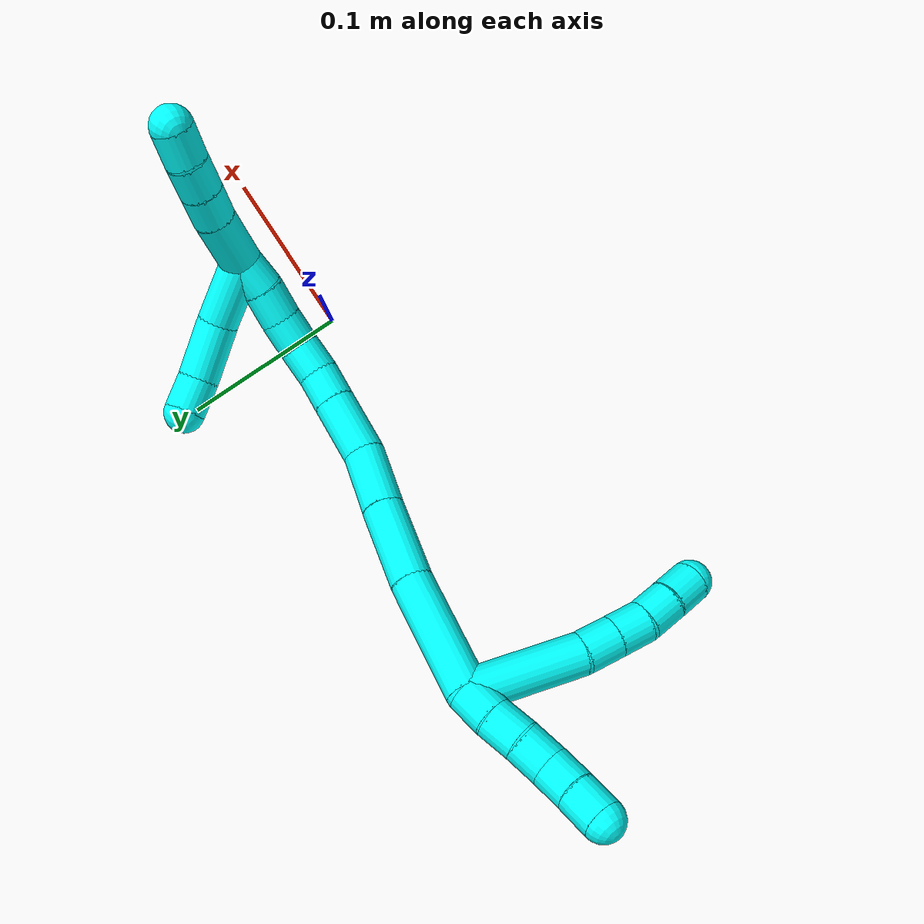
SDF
<sdf version="1.7">
 <world name="default">
  <model name="3">
   <static>0</static>
   <link name="3">
    <collision name="collision-cylinder-e_1_2_8">
     <pose>0.008186 -0.031663 0.008845 1.29838 0.24403 0.185591</pose>
     <geometry><cylinder><radius>0.0125</radius><length>0.067759</length></cylinder></geometry>
     <surface>
      <friction><ode><mu>1.16</mu><mu2>1.16</mu2><slip1>0</slip1><slip2>0</slip2></ode></friction>
      <contact><ode><kp>1e+06</kp><kd>1</kd><max_vel>0</max_vel><min_depth>0.001</min_depth></ode></contact>
     </surface>
    </collision>
    <visual name="visual-cylinder-e_1_2_8">
     <pose>0.008186 -0.031663 0.008845 1.29838 0.24403 0.185591</pose>
     <geometry><cylinder><radius>0.0125</radius><length>0.067759</length></cylinder></geometry>
     <material><ambient>0.003922 1 0.996078 1</ambient></material>
    </visual>
    <collision name="collision-cylinder-e_2_8_9">
     <pose>0.019188 -0.073516 0.018839 1.45862 0.268075 0.239861</pose>
     <geometry><cylinder><radius>0.0125</radius><length>0.021269</length></cylinder></geometry>
     <surface>
      <friction><ode><mu>1.16</mu><mu2>1.16</mu2><slip1>0</slip1><slip2>0</slip2></ode></friction>
      <contact><ode><kp>1e+06</kp><kd>1</kd><max_vel>0</max_vel><min_depth>0.001</min_depth></ode></contact>
     </surface>
    </collision>
    <visual name="visual-cylinder-e_2_8_9">
     <pose>0.019188 -0.073516 0.018839 1.45862 0.268075 0.239861</pose>
     <geometry><cylinder><radius>0.0125</radius><length>0.021269</length></cylinder></geometry>
     <material><ambient>0.003922 1 0.996078 1</ambient></material>
    </visual>
    <collision name="collision-cylinder-e_3_9_10">
     <pose>0.024738 -0.093429 0.021033 1.46357 0.272558 0.245087</pose>
     <geometry><cylinder><radius>0.0125</radius><length>0.020307</length></cylinder></geometry>
     <surface>
      <friction><ode><mu>1.16</mu><mu2>1.16</mu2><slip1>0</slip1><slip2>0</slip2></ode></friction>
      <contact><ode><kp>1e+06</kp><kd>1</kd><max_vel>0</max_vel><min_depth>0.001</min_depth></ode></contact>
     </surface>
    </collision>
    <visual name="visual-cylinder-e_3_9_10">
     <pose>0.024738 -0.093429 0.021033 1.46357 0.272558 0.245087</pose>
     <geometry><cylinder><radius>0.0125</radius><length>0.020307</length></cylinder></geometry>
     <material><ambient>0.003922 1 0.996078 1</ambient></material>
    </visual>
    <collision name="collision-cylinder-e_4_10_11">
     <pose>0.030305 -0.112837 0.021098 1.67184 0.283245 0.312949</pose>
     <geometry><cylinder><radius>0.0125</radius><length>0.020279</length></cylinder></geometry>
     <surface>
      <friction><ode><mu>1.16</mu><mu2>1.16</mu2><slip1>0</slip1><slip2>0</slip2></ode></friction>
      <contact><ode><kp>1e+06</kp><kd>1</kd><max_vel>0</max_vel><min_depth>0.001</min_depth></ode></contact>
     </surface>
    </collision>
    <visual name="visual-cylinder-e_4_10_11">
     <pose>0.030305 -0.112837 0.021098 1.67184 0.283245 0.312949</pose>
     <geometry><cylinder><radius>0.0125</radius><length>0.020279</length></cylinder></geometry>
     <material><ambient>0.003922 1 0.996078 1</ambient></material>
    </visual>
    <collision name="collision-cylinder-e_5_11_6">
     <pose>0.035246 -0.132397 0.018712 1.71203 0.208153 0.239559</pose>
     <geometry><cylinder><radius>0.0125</radius><length>0.020387</length></cylinder></geometry>
     <surface>
      <friction><ode><mu>1.16</mu><mu2>1.16</mu2><slip1>0</slip1><slip2>0</slip2></ode></friction>
      <contact><ode><kp>1e+06</kp><kd>1</kd><max_vel>0</max_vel><min_depth>0.001</min_depth></ode></contact>
     </surface>
    </collision>
    <visual name="visual-cylinder-e_5_11_6">
     <pose>0.035246 -0.132397 0.018712 1.71203 0.208153 0.239559</pose>
     <geometry><cylinder><radius>0.0125</radius><length>0.020387</length></cylinder></geometry>
     <material><ambient>0.003922 1 0.996078 1</ambient></material>
    </visual>
    <collision name="collision-cylinder-e_1_2_12">
     <pose>-0.000391 -0.001232 0.009916 0.123649 -0.039135 -0.002423</pose>
     <geometry><cylinder><radius>0.0125</radius><length>0.02</length></cylinder></geometry>
     <surface>
      <friction><ode><mu>1.16</mu><mu2>1.16</mu2><slip1>0</slip1><slip2>0</slip2></ode></friction>
      <contact><ode><kp>1e+06</kp><kd>1</kd><max_vel>0</max_vel><min_depth>0.001</min_depth></ode></contact>
     </surface>
    </collision>
    <visual name="visual-cylinder-e_1_2_12">
     <pose>-0.000391 -0.001232 0.009916 0.123649 -0.039135 -0.002423</pose>
     <geometry><cylinder><radius>0.0125</radius><length>0.02</length></cylinder></geometry>
     <material><ambient>0.003922 1 0.996078 1</ambient></material>
    </visual>
    <collision name="collision-cylinder-e_2_12_13">
     <pose>-0.000964 -0.004751 0.029566 0.230702 -0.018174 -0.002106</pose>
     <geometry><cylinder><radius>0.0125</radius><length>0.02</length></cylinder></geometry>
     <surface>
      <friction><ode><mu>1.16</mu><mu2>1.16</mu2><slip1>0</slip1><slip2>0</slip2></ode></friction>
      <contact><ode><kp>1e+06</kp><kd>1</kd><max_vel>0</max_vel><min_depth>0.001</min_depth></ode></contact>
     </surface>
    </collision>
    <visual name="visual-cylinder-e_2_12_13">
     <pose>-0.000964 -0.004751 0.029566 0.230702 -0.018174 -0.002106</pose>
     <geometry><cylinder><radius>0.0125</radius><length>0.02</length></cylinder></geometry>
     <material><ambient>0.003922 1 0.996078 1</ambient></material>
    </visual>
    <collision name="collision-cylinder-e_3_13_14">
     <pose>-0.002468 -0.009551 0.048887 0.256358 -0.132566 -0.017111</pose>
     <geometry><cylinder><radius>0.0125</radius><length>0.02</length></cylinder></geometry>
     <surface>
      <friction><ode><mu>1.16</mu><mu2>1.16</mu2><slip1>0</slip1><slip2>0</slip2></ode></friction>
      <contact><ode><kp>1e+06</kp><kd>1</kd><max_vel>0</max_vel><min_depth>0.001</min_depth></ode></contact>
     </surface>
    </collision>
    <visual name="visual-cylinder-e_3_13_14">
     <pose>-0.002468 -0.009551 0.048887 0.256358 -0.132566 -0.017111</pose>
     <geometry><cylinder><radius>0.0125</radius><length>0.02</length></cylinder></geometry>
     <material><ambient>0.003922 1 0.996078 1</ambient></material>
    </visual>
    <collision name="collision-cylinder-e_4_14_15">
     <pose>-0.002633 -0.012324 0.068405 0.026152 0.115922 0.001518</pose>
     <geometry><cylinder><radius>0.0125</radius><length>0.02</length></cylinder></geometry>
     <surface>
      <friction><ode><mu>1.16</mu><mu2>1.16</mu2><slip1>0</slip1><slip2>0</slip2></ode></friction>
      <contact><ode><kp>1e+06</kp><kd>1</kd><max_vel>0</max_vel><min_depth>0.001</min_depth></ode></contact>
     </surface>
    </collision>
    <visual name="visual-cylinder-e_4_14_15">
     <pose>-0.002633 -0.012324 0.068405 0.026152 0.115922 0.001518</pose>
     <geometry><cylinder><radius>0.0125</radius><length>0.02</length></cylinder></geometry>
     <material><ambient>0.003922 1 0.996078 1</ambient></material>
    </visual>
    <collision name="collision-cylinder-e_5_15_5">
     <pose>-0.000899 -0.012926 0.088312 0.034306 0.057771 0.000991</pose>
     <geometry><cylinder><radius>0.0125</radius><length>0.02</length></cylinder></geometry>
     <surface>
      <friction><ode><mu>1.16</mu><mu2>1.16</mu2><slip1>0</slip1><slip2>0</slip2></ode></friction>
      <contact><ode><kp>1e+06</kp><kd>1</kd><max_vel>0</max_vel><min_depth>0.001</min_depth></ode></contact>
     </surface>
    </collision>
    <visual name="visual-cylinder-e_5_15_5">
     <pose>-0.000899 -0.012926 0.088312 0.034306 0.057771 0.000991</pose>
     <geometry><cylinder><radius>0.0125</radius><length>0.02</length></cylinder></geometry>
     <material><ambient>0.003922 1 0.996078 1</ambient></material>
    </visual>
    <collision name="collision-cylinder-e_1_2_16">
     <pose>0.006771 -0.004943 -0.035106 3.00172 0.188711 1.86718</pose>
     <geometry><cylinder><radius>0.0125</radius><length>0.072186</length></cylinder></geometry>
     <surface>
      <friction><ode><mu>1.16</mu><mu2>1.16</mu2><slip1>0</slip1><slip2>0</slip2></ode></friction>
      <contact><ode><kp>1e+06</kp><kd>1</kd><max_vel>0</max_vel><min_depth>0.001</min_depth></ode></contact>
     </surface>
    </collision>
    <visual name="visual-cylinder-e_1_2_16">
     <pose>0.006771 -0.004943 -0.035106 3.00172 0.188711 1.86718</pose>
     <geometry><cylinder><radius>0.0125</radius><length>0.072186</length></cylinder></geometry>
     <material><ambient>0.003922 1 0.996078 1</ambient></material>
    </visual>
    <collision name="collision-cylinder-e_2_16_17">
     <pose>0.019614 -0.014956 -0.09368 2.92882 0.24771 1.72357</pose>
     <geometry><cylinder><radius>0.0125</radius><length>0.04953</length></cylinder></geometry>
     <surface>
      <friction><ode><mu>1.16</mu><mu2>1.16</mu2><slip1>0</slip1><slip2>0</slip2></ode></friction>
      <contact><ode><kp>1e+06</kp><kd>1</kd><max_vel>0</max_vel><min_depth>0.001</min_depth></ode></contact>
     </surface>
    </collision>
    <visual name="visual-cylinder-e_2_16_17">
     <pose>0.019614 -0.014956 -0.09368 2.92882 0.24771 1.72357</pose>
     <geometry><cylinder><radius>0.0125</radius><length>0.04953</length></cylinder></geometry>
     <material><ambient>0.003922 1 0.996078 1</ambient></material>
    </visual>
    <collision name="collision-cylinder-e_3_17_18">
     <pose>0.030463 -0.024602 -0.135232 2.89373 0.250695 1.58227</pose>
     <geometry><cylinder><radius>0.0125</radius><length>0.038512</length></cylinder></geometry>
     <surface>
      <friction><ode><mu>1.16</mu><mu2>1.16</mu2><slip1>0</slip1><slip2>0</slip2></ode></friction>
      <contact><ode><kp>1e+06</kp><kd>1</kd><max_vel>0</max_vel><min_depth>0.001</min_depth></ode></contact>
     </surface>
    </collision>
    <visual name="visual-cylinder-e_3_17_18">
     <pose>0.030463 -0.024602 -0.135232 2.89373 0.250695 1.58227</pose>
     <geometry><cylinder><radius>0.0125</radius><length>0.038512</length></cylinder></geometry>
     <material><ambient>0.003922 1 0.996078 1</ambient></material>
    </visual>
    <collision name="collision-cylinder-e_4_18_19">
     <pose>0.041986 -0.02868 -0.170713 -3.11292 0.369775 -2.98859</pose>
     <geometry><cylinder><radius>0.0125</radius><length>0.037332</length></cylinder></geometry>
     <surface>
      <friction><ode><mu>1.16</mu><mu2>1.16</mu2><slip1>0</slip1><slip2>0</slip2></ode></friction>
      <contact><ode><kp>1e+06</kp><kd>1</kd><max_vel>0</max_vel><min_depth>0.001</min_depth></ode></contact>
     </surface>
    </collision>
    <visual name="visual-cylinder-e_4_18_19">
     <pose>0.041986 -0.02868 -0.170713 -3.11292 0.369775 -2.98859</pose>
     <geometry><cylinder><radius>0.0125</radius><length>0.037332</length></cylinder></geometry>
     <material><ambient>0.003922 1 0.996078 1</ambient></material>
    </visual>
    <collision name="collision-cylinder-e_5_19_20">
     <pose>0.052622 -0.027895 -0.197692 -3.11181 0.385504 -2.9893</pose>
     <geometry><cylinder><radius>0.0125</radius><length>0.02069</length></cylinder></geometry>
     <surface>
      <friction><ode><mu>1.16</mu><mu2>1.16</mu2><slip1>0</slip1><slip2>0</slip2></ode></friction>
      <contact><ode><kp>1e+06</kp><kd>1</kd><max_vel>0</max_vel><min_depth>0.001</min_depth></ode></contact>
     </surface>
    </collision>
    <visual name="visual-cylinder-e_5_19_20">
     <pose>0.052622 -0.027895 -0.197692 -3.11181 0.385504 -2.9893</pose>
     <geometry><cylinder><radius>0.0125</radius><length>0.02069</length></cylinder></geometry>
     <material><ambient>0.003922 1 0.996078 1</ambient></material>
    </visual>
    <collision name="collision-cylinder-e_6_20_21">
     <pose>0.061266 -0.025454 -0.215989 -2.89906 0.487004 -2.22949</pose>
     <geometry><cylinder><radius>0.0125</radius><length>0.020317</length></cylinder></geometry>
     <surface>
      <friction><ode><mu>1.16</mu><mu2>1.16</mu2><slip1>0</slip1><slip2>0</slip2></ode></friction>
      <contact><ode><kp>1e+06</kp><kd>1</kd><max_vel>0</max_vel><min_depth>0.001</min_depth></ode></contact>
     </surface>
    </collision>
    <visual name="visual-cylinder-e_6_20_21">
     <pose>0.061266 -0.025454 -0.215989 -2.89906 0.487004 -2.22949</pose>
     <geometry><cylinder><radius>0.0125</radius><length>0.020317</length></cylinder></geometry>
     <material><ambient>0.003922 1 0.996078 1</ambient></material>
    </visual>
    <collision name="collision-cylinder-e_7_21_22">
     <pose>0.072635 -0.019957 -0.231727 -2.69764 0.70479 -2.04069</pose>
     <geometry><cylinder><radius>0.0125</radius><length>0.020421</length></cylinder></geometry>
     <surface>
      <friction><ode><mu>1.16</mu><mu2>1.16</mu2><slip1>0</slip1><slip2>0</slip2></ode></friction>
      <contact><ode><kp>1e+06</kp><kd>1</kd><max_vel>0</max_vel><min_depth>0.001</min_depth></ode></contact>
     </surface>
    </collision>
    <visual name="visual-cylinder-e_7_21_22">
     <pose>0.072635 -0.019957 -0.231727 -2.69764 0.70479 -2.04069</pose>
     <geometry><cylinder><radius>0.0125</radius><length>0.020421</length></cylinder></geometry>
     <material><ambient>0.003922 1 0.996078 1</ambient></material>
    </visual>
    <collision name="collision-cylinder-e_8_22_23">
     <pose>0.08692 -0.013169 -0.244896 -2.63033 0.827743 -2.06812</pose>
     <geometry><cylinder><radius>0.0125</radius><length>0.020831</length></cylinder></geometry>
     <surface>
      <friction><ode><mu>1.16</mu><mu2>1.16</mu2><slip1>0</slip1><slip2>0</slip2></ode></friction>
      <contact><ode><kp>1e+06</kp><kd>1</kd><max_vel>0</max_vel><min_depth>0.001</min_depth></ode></contact>
     </surface>
    </collision>
    <visual name="visual-cylinder-e_8_22_23">
     <pose>0.08692 -0.013169 -0.244896 -2.63033 0.827743 -2.06812</pose>
     <geometry><cylinder><radius>0.0125</radius><length>0.020831</length></cylinder></geometry>
     <material><ambient>0.003922 1 0.996078 1</ambient></material>
    </visual>
    <collision name="collision-cylinder-e_9_23_1">
     <pose>0.101088 -0.005129 -0.257247 -2.50452 0.699668 -1.6717</pose>
     <geometry><cylinder><radius>0.0125</radius><length>0.02018</length></cylinder></geometry>
     <surface>
      <friction><ode><mu>1.16</mu><mu2>1.16</mu2><slip1>0</slip1><slip2>0</slip2></ode></friction>
      <contact><ode><kp>1e+06</kp><kd>1</kd><max_vel>0</max_vel><min_depth>0.001</min_depth></ode></contact>
     </surface>
    </collision>
    <visual name="visual-cylinder-e_9_23_1">
     <pose>0.101088 -0.005129 -0.257247 -2.50452 0.699668 -1.6717</pose>
     <geometry><cylinder><radius>0.0125</radius><length>0.02018</length></cylinder></geometry>
     <material><ambient>0.003922 1 0.996078 1</ambient></material>
    </visual>
    <collision name="collision-cylinder-e_1_1_24">
     <pose>0.088381 0.006172 -0.262083 -1.36957 -1.22826 1.04484</pose>
     <geometry><cylinder><radius>0.0125</radius><length>0.040776</length></cylinder></geometry>
     <surface>
      <friction><ode><mu>1.16</mu><mu2>1.16</mu2><slip1>0</slip1><slip2>0</slip2></ode></friction>
      <contact><ode><kp>1e+06</kp><kd>1</kd><max_vel>0</max_vel><min_depth>0.001</min_depth></ode></contact>
     </surface>
    </collision>
    <visual name="visual-cylinder-e_1_1_24">
     <pose>0.088381 0.006172 -0.262083 -1.36957 -1.22826 1.04484</pose>
     <geometry><cylinder><radius>0.0125</radius><length>0.040776</length></cylinder></geometry>
     <material><ambient>0.003922 1 0.996078 1</ambient></material>
    </visual>
    <collision name="collision-cylinder-e_2_24_25">
     <pose>0.053901 0.021495 -0.254751 -0.965206 -0.969713 0.538597</pose>
     <geometry><cylinder><radius>0.0125</radius><length>0.037047</length></cylinder></geometry>
     <surface>
      <friction><ode><mu>1.16</mu><mu2>1.16</mu2><slip1>0</slip1><slip2>0</slip2></ode></friction>
      <contact><ode><kp>1e+06</kp><kd>1</kd><max_vel>0</max_vel><min_depth>0.001</min_depth></ode></contact>
     </surface>
    </collision>
    <visual name="visual-cylinder-e_2_24_25">
     <pose>0.053901 0.021495 -0.254751 -0.965206 -0.969713 0.538597</pose>
     <geometry><cylinder><radius>0.0125</radius><length>0.037047</length></cylinder></geometry>
     <material><ambient>0.003922 1 0.996078 1</ambient></material>
    </visual>
    <collision name="collision-cylinder-e_3_25_4">
     <pose>0.031568 0.037018 -0.243747 -0.940523 -0.689776 0.361226</pose>
     <geometry><cylinder><radius>0.0125</radius><length>0.022177</length></cylinder></geometry>
     <surface>
      <friction><ode><mu>1.16</mu><mu2>1.16</mu2><slip1>0</slip1><slip2>0</slip2></ode></friction>
      <contact><ode><kp>1e+06</kp><kd>1</kd><max_vel>0</max_vel><min_depth>0.001</min_depth></ode></contact>
     </surface>
    </collision>
    <visual name="visual-cylinder-e_3_25_4">
     <pose>0.031568 0.037018 -0.243747 -0.940523 -0.689776 0.361226</pose>
     <geometry><cylinder><radius>0.0125</radius><length>0.022177</length></cylinder></geometry>
     <material><ambient>0.003922 1 0.996078 1</ambient></material>
    </visual>
    <collision name="collision-cylinder-e_1_1_26">
     <pose>0.123343 0.008965 -0.26628 -1.8601 1.0092 -1.27495</pose>
     <geometry><cylinder><radius>0.0125</radius><length>0.037234</length></cylinder></geometry>
     <surface>
      <friction><ode><mu>1.16</mu><mu2>1.16</mu2><slip1>0</slip1><slip2>0</slip2></ode></friction>
      <contact><ode><kp>1e+06</kp><kd>1</kd><max_vel>0</max_vel><min_depth>0.001</min_depth></ode></contact>
     </surface>
    </collision>
    <visual name="visual-cylinder-e_1_1_26">
     <pose>0.123343 0.008965 -0.26628 -1.8601 1.0092 -1.27495</pose>
     <geometry><cylinder><radius>0.0125</radius><length>0.037234</length></cylinder></geometry>
     <material><ambient>0.003922 1 0.996078 1</ambient></material>
    </visual>
    <collision name="collision-cylinder-e_2_26_27">
     <pose>0.148315 0.022994 -0.270266 -1.82098 1.10152 -1.33824</pose>
     <geometry><cylinder><radius>0.0125</radius><length>0.020664</length></cylinder></geometry>
     <surface>
      <friction><ode><mu>1.16</mu><mu2>1.16</mu2><slip1>0</slip1><slip2>0</slip2></ode></friction>
      <contact><ode><kp>1e+06</kp><kd>1</kd><max_vel>0</max_vel><min_depth>0.001</min_depth></ode></contact>
     </surface>
    </collision>
    <visual name="visual-cylinder-e_2_26_27">
     <pose>0.148315 0.022994 -0.270266 -1.82098 1.10152 -1.33824</pose>
     <geometry><cylinder><radius>0.0125</radius><length>0.020664</length></cylinder></geometry>
     <material><ambient>0.003922 1 0.996078 1</ambient></material>
    </visual>
    <collision name="collision-cylinder-e_3_27_28">
     <pose>0.166737 0.032041 -0.273003 -1.90721 1.09123 -1.41528</pose>
     <geometry><cylinder><radius>0.0125</radius><length>0.020754</length></cylinder></geometry>
     <surface>
      <friction><ode><mu>1.16</mu><mu2>1.16</mu2><slip1>0</slip1><slip2>0</slip2></ode></friction>
      <contact><ode><kp>1e+06</kp><kd>1</kd><max_vel>0</max_vel><min_depth>0.001</min_depth></ode></contact>
     </surface>
    </collision>
    <visual name="visual-cylinder-e_3_27_28">
     <pose>0.166737 0.032041 -0.273003 -1.90721 1.09123 -1.41528</pose>
     <geometry><cylinder><radius>0.0125</radius><length>0.020754</length></cylinder></geometry>
     <material><ambient>0.003922 1 0.996078 1</ambient></material>
    </visual>
    <collision name="collision-cylinder-e_4_28_3">
     <pose>0.185499 0.040436 -0.277341 -2.18918 1.10896 -1.75264</pose>
     <geometry><cylinder><radius>0.0125</radius><length>0.021348</length></cylinder></geometry>
     <surface>
      <friction><ode><mu>1.16</mu><mu2>1.16</mu2><slip1>0</slip1><slip2>0</slip2></ode></friction>
      <contact><ode><kp>1e+06</kp><kd>1</kd><max_vel>0</max_vel><min_depth>0.001</min_depth></ode></contact>
     </surface>
    </collision>
    <visual name="visual-cylinder-e_4_28_3">
     <pose>0.185499 0.040436 -0.277341 -2.18918 1.10896 -1.75264</pose>
     <geometry><cylinder><radius>0.0125</radius><length>0.021348</length></cylinder></geometry>
     <material><ambient>0.003922 1 0.996078 1</ambient></material>
    </visual>
    <collision name="collision-sphere-3">
     <pose>0.195055 0.044311 -0.280098 0 -0 0</pose>
     <geometry><sphere><radius>0.0125</radius></sphere></geometry>
     <surface>
      <friction><ode><mu>1.16</mu><mu2>1.16</mu2><slip1>0</slip1><slip2>0</slip2></ode></friction>
      <contact><ode><kp>1e+06</kp><kd>1</kd><max_vel>0</max_vel><min_depth>0.001</min_depth></ode></contact>
     </surface>
    </collision>
    <visual name="visual-sphere-3">
     <pose>0.195055 0.044311 -0.280098 0 -0 0</pose>
     <geometry><sphere><radius>0.0125</radius></sphere></geometry>
     <material><ambient>0.003922 1 0.996078 1</ambient></material>
    </visual>
    <collision name="collision-sphere-28">
     <pose>0.175943 0.03656 -0.274583 0 -0 0</pose>
     <geometry><sphere><radius>0.0125</radius></sphere></geometry>
     <surface>
      <friction><ode><mu>1.16</mu><mu2>1.16</mu2><slip1>0</slip1><slip2>0</slip2></ode></friction>
      <contact><ode><kp>1e+06</kp><kd>1</kd><max_vel>0</max_vel><min_depth>0.001</min_depth></ode></contact>
     </surface>
    </collision>
    <visual name="visual-sphere-28">
     <pose>0.175943 0.03656 -0.274583 0 -0 0</pose>
     <geometry><sphere><radius>0.0125</radius></sphere></geometry>
     <material><ambient>0.003922 1 0.996078 1</ambient></material>
    </visual>
    <collision name="collision-sphere-27">
     <pose>0.15753 0.027521 -0.271422 0 -0 0</pose>
     <geometry><sphere><radius>0.0125</radius></sphere></geometry>
     <surface>
      <friction><ode><mu>1.16</mu><mu2>1.16</mu2><slip1>0</slip1><slip2>0</slip2></ode></friction>
      <contact><ode><kp>1e+06</kp><kd>1</kd><max_vel>0</max_vel><min_depth>0.001</min_depth></ode></contact>
     </surface>
    </collision>
    <visual name="visual-sphere-27">
     <pose>0.15753 0.027521 -0.271422 0 -0 0</pose>
     <geometry><sphere><radius>0.0125</radius></sphere></geometry>
     <material><ambient>0.003922 1 0.996078 1</ambient></material>
    </visual>
    <collision name="collision-sphere-26">
     <pose>0.1391 0.018467 -0.269109 0 -0 0</pose>
     <geometry><sphere><radius>0.0125</radius></sphere></geometry>
     <surface>
      <friction><ode><mu>1.16</mu><mu2>1.16</mu2><slip1>0</slip1><slip2>0</slip2></ode></friction>
      <contact><ode><kp>1e+06</kp><kd>1</kd><max_vel>0</max_vel><min_depth>0.001</min_depth></ode></contact>
     </surface>
    </collision>
    <visual name="visual-sphere-26">
     <pose>0.1391 0.018467 -0.269109 0 -0 0</pose>
     <geometry><sphere><radius>0.0125</radius></sphere></geometry>
     <material><ambient>0.003922 1 0.996078 1</ambient></material>
    </visual>
    <collision name="collision-sphere-4">
     <pose>0.024512 0.043928 -0.238706 0 -0 0</pose>
     <geometry><sphere><radius>0.0125</radius></sphere></geometry>
     <surface>
      <friction><ode><mu>1.16</mu><mu2>1.16</mu2><slip1>0</slip1><slip2>0</slip2></ode></friction>
      <contact><ode><kp>1e+06</kp><kd>1</kd><max_vel>0</max_vel><min_depth>0.001</min_depth></ode></contact>
     </surface>
    </collision>
    <visual name="visual-sphere-4">
     <pose>0.024512 0.043928 -0.238706 0 -0 0</pose>
     <geometry><sphere><radius>0.0125</radius></sphere></geometry>
     <material><ambient>0.003922 1 0.996078 1</ambient></material>
    </visual>
    <collision name="collision-sphere-25">
     <pose>0.038624 0.030108 -0.248788 0 -0 0</pose>
     <geometry><sphere><radius>0.0125</radius></sphere></geometry>
     <surface>
      <friction><ode><mu>1.16</mu><mu2>1.16</mu2><slip1>0</slip1><slip2>0</slip2></ode></friction>
      <contact><ode><kp>1e+06</kp><kd>1</kd><max_vel>0</max_vel><min_depth>0.001</min_depth></ode></contact>
     </surface>
    </collision>
    <visual name="visual-sphere-25">
     <pose>0.038624 0.030108 -0.248788 0 -0 0</pose>
     <geometry><sphere><radius>0.0125</radius></sphere></geometry>
     <material><ambient>0.003922 1 0.996078 1</ambient></material>
    </visual>
    <collision name="collision-sphere-24">
     <pose>0.069178 0.012882 -0.260715 0 -0 0</pose>
     <geometry><sphere><radius>0.0125</radius></sphere></geometry>
     <surface>
      <friction><ode><mu>1.16</mu><mu2>1.16</mu2><slip1>0</slip1><slip2>0</slip2></ode></friction>
      <contact><ode><kp>1e+06</kp><kd>1</kd><max_vel>0</max_vel><min_depth>0.001</min_depth></ode></contact>
     </surface>
    </collision>
    <visual name="visual-sphere-24">
     <pose>0.069178 0.012882 -0.260715 0 -0 0</pose>
     <geometry><sphere><radius>0.0125</radius></sphere></geometry>
     <material><ambient>0.003922 1 0.996078 1</ambient></material>
    </visual>
    <collision name="collision-sphere-1">
     <pose>0.107585 -0.000537 -0.263452 0 -0 0</pose>
     <geometry><sphere><radius>0.0125</radius></sphere></geometry>
     <surface>
      <friction><ode><mu>1.16</mu><mu2>1.16</mu2><slip1>0</slip1><slip2>0</slip2></ode></friction>
      <contact><ode><kp>1e+06</kp><kd>1</kd><max_vel>0</max_vel><min_depth>0.001</min_depth></ode></contact>
     </surface>
    </collision>
    <visual name="visual-sphere-1">
     <pose>0.107585 -0.000537 -0.263452 0 -0 0</pose>
     <geometry><sphere><radius>0.0125</radius></sphere></geometry>
     <material><ambient>0.003922 1 0.996078 1</ambient></material>
    </visual>
    <collision name="collision-sphere-23">
     <pose>0.09459 -0.009721 -0.251042 0 -0 0</pose>
     <geometry><sphere><radius>0.0125</radius></sphere></geometry>
     <surface>
      <friction><ode><mu>1.16</mu><mu2>1.16</mu2><slip1>0</slip1><slip2>0</slip2></ode></friction>
      <contact><ode><kp>1e+06</kp><kd>1</kd><max_vel>0</max_vel><min_depth>0.001</min_depth></ode></contact>
     </surface>
    </collision>
    <visual name="visual-sphere-23">
     <pose>0.09459 -0.009721 -0.251042 0 -0 0</pose>
     <geometry><sphere><radius>0.0125</radius></sphere></geometry>
     <material><ambient>0.003922 1 0.996078 1</ambient></material>
    </visual>
    <collision name="collision-sphere-22">
     <pose>0.07925 -0.016616 -0.238751 0 -0 0</pose>
     <geometry><sphere><radius>0.0125</radius></sphere></geometry>
     <surface>
      <friction><ode><mu>1.16</mu><mu2>1.16</mu2><slip1>0</slip1><slip2>0</slip2></ode></friction>
      <contact><ode><kp>1e+06</kp><kd>1</kd><max_vel>0</max_vel><min_depth>0.001</min_depth></ode></contact>
     </surface>
    </collision>
    <visual name="visual-sphere-22">
     <pose>0.07925 -0.016616 -0.238751 0 -0 0</pose>
     <geometry><sphere><radius>0.0125</radius></sphere></geometry>
     <material><ambient>0.003922 1 0.996078 1</ambient></material>
    </visual>
    <collision name="collision-sphere-21">
     <pose>0.06602 -0.023298 -0.224704 0 -0 0</pose>
     <geometry><sphere><radius>0.0125</radius></sphere></geometry>
     <surface>
      <friction><ode><mu>1.16</mu><mu2>1.16</mu2><slip1>0</slip1><slip2>0</slip2></ode></friction>
      <contact><ode><kp>1e+06</kp><kd>1</kd><max_vel>0</max_vel><min_depth>0.001</min_depth></ode></contact>
     </surface>
    </collision>
    <visual name="visual-sphere-21">
     <pose>0.06602 -0.023298 -0.224704 0 -0 0</pose>
     <geometry><sphere><radius>0.0125</radius></sphere></geometry>
     <material><ambient>0.003922 1 0.996078 1</ambient></material>
    </visual>
    <collision name="collision-sphere-6">
     <pose>0.037352 -0.142271 0.017308 0 -0 0</pose>
     <geometry><sphere><radius>0.0125</radius></sphere></geometry>
     <surface>
      <friction><ode><mu>1.16</mu><mu2>1.16</mu2><slip1>0</slip1><slip2>0</slip2></ode></friction>
      <contact><ode><kp>1e+06</kp><kd>1</kd><max_vel>0</max_vel><min_depth>0.001</min_depth></ode></contact>
     </surface>
    </collision>
    <visual name="visual-sphere-6">
     <pose>0.037352 -0.142271 0.017308 0 -0 0</pose>
     <geometry><sphere><radius>0.0125</radius></sphere></geometry>
     <material><ambient>0.003922 1 0.996078 1</ambient></material>
    </visual>
    <collision name="collision-sphere-11">
     <pose>0.033139 -0.122523 0.020116 0 -0 0</pose>
     <geometry><sphere><radius>0.0125</radius></sphere></geometry>
     <surface>
      <friction><ode><mu>1.16</mu><mu2>1.16</mu2><slip1>0</slip1><slip2>0</slip2></ode></friction>
      <contact><ode><kp>1e+06</kp><kd>1</kd><max_vel>0</max_vel><min_depth>0.001</min_depth></ode></contact>
     </surface>
    </collision>
    <visual name="visual-sphere-11">
     <pose>0.033139 -0.122523 0.020116 0 -0 0</pose>
     <geometry><sphere><radius>0.0125</radius></sphere></geometry>
     <material><ambient>0.003922 1 0.996078 1</ambient></material>
    </visual>
    <collision name="collision-sphere-10">
     <pose>0.027472 -0.103151 0.02208 0 -0 0</pose>
     <geometry><sphere><radius>0.0125</radius></sphere></geometry>
     <surface>
      <friction><ode><mu>1.16</mu><mu2>1.16</mu2><slip1>0</slip1><slip2>0</slip2></ode></friction>
      <contact><ode><kp>1e+06</kp><kd>1</kd><max_vel>0</max_vel><min_depth>0.001</min_depth></ode></contact>
     </surface>
    </collision>
    <visual name="visual-sphere-10">
     <pose>0.027472 -0.103151 0.02208 0 -0 0</pose>
     <geometry><sphere><radius>0.0125</radius></sphere></geometry>
     <material><ambient>0.003922 1 0.996078 1</ambient></material>
    </visual>
    <collision name="collision-sphere-9">
     <pose>0.022005 -0.083707 0.019987 0 -0 0</pose>
     <geometry><sphere><radius>0.0125</radius></sphere></geometry>
     <surface>
      <friction><ode><mu>1.16</mu><mu2>1.16</mu2><slip1>0</slip1><slip2>0</slip2></ode></friction>
      <contact><ode><kp>1e+06</kp><kd>1</kd><max_vel>0</max_vel><min_depth>0.001</min_depth></ode></contact>
     </surface>
    </collision>
    <visual name="visual-sphere-9">
     <pose>0.022005 -0.083707 0.019987 0 -0 0</pose>
     <geometry><sphere><radius>0.0125</radius></sphere></geometry>
     <material><ambient>0.003922 1 0.996078 1</ambient></material>
    </visual>
    <collision name="collision-sphere-2">
     <geometry><sphere><radius>0.0125</radius></sphere></geometry>
     <surface>
      <friction><ode><mu>1.16</mu><mu2>1.16</mu2><slip1>0</slip1><slip2>0</slip2></ode></friction>
      <contact><ode><kp>1e+06</kp><kd>1</kd><max_vel>0</max_vel><min_depth>0.001</min_depth></ode></contact>
     </surface>
    </collision>
    <visual name="visual-sphere-2">
     <geometry><sphere><radius>0.0125</radius></sphere></geometry>
     <material><ambient>0.003922 1 0.996078 1</ambient></material>
    </visual>
    <collision name="collision-sphere-19">
     <pose>0.048732 -0.028181 -0.18811 0 -0 0</pose>
     <geometry><sphere><radius>0.0125</radius></sphere></geometry>
     <surface>
      <friction><ode><mu>1.16</mu><mu2>1.16</mu2><slip1>0</slip1><slip2>0</slip2></ode></friction>
      <contact><ode><kp>1e+06</kp><kd>1</kd><max_vel>0</max_vel><min_depth>0.001</min_depth></ode></contact>
     </surface>
    </collision>
    <visual name="visual-sphere-19">
     <pose>0.048732 -0.028181 -0.18811 0 -0 0</pose>
     <geometry><sphere><radius>0.0125</radius></sphere></geometry>
     <material><ambient>0.003922 1 0.996078 1</ambient></material>
    </visual>
    <collision name="collision-sphere-8">
     <pose>0.016372 -0.063326 0.017691 0 -0 0</pose>
     <geometry><sphere><radius>0.0125</radius></sphere></geometry>
     <surface>
      <friction><ode><mu>1.16</mu><mu2>1.16</mu2><slip1>0</slip1><slip2>0</slip2></ode></friction>
      <contact><ode><kp>1e+06</kp><kd>1</kd><max_vel>0</max_vel><min_depth>0.001</min_depth></ode></contact>
     </surface>
    </collision>
    <visual name="visual-sphere-8">
     <pose>0.016372 -0.063326 0.017691 0 -0 0</pose>
     <geometry><sphere><radius>0.0125</radius></sphere></geometry>
     <material><ambient>0.003922 1 0.996078 1</ambient></material>
    </visual>
    <collision name="collision-sphere-12">
     <pose>-0.000783 -0.002465 0.019832 0 -0 0</pose>
     <geometry><sphere><radius>0.0125</radius></sphere></geometry>
     <surface>
      <friction><ode><mu>1.16</mu><mu2>1.16</mu2><slip1>0</slip1><slip2>0</slip2></ode></friction>
      <contact><ode><kp>1e+06</kp><kd>1</kd><max_vel>0</max_vel><min_depth>0.001</min_depth></ode></contact>
     </surface>
    </collision>
    <visual name="visual-sphere-12">
     <pose>-0.000783 -0.002465 0.019832 0 -0 0</pose>
     <geometry><sphere><radius>0.0125</radius></sphere></geometry>
     <material><ambient>0.003922 1 0.996078 1</ambient></material>
    </visual>
    <collision name="collision-sphere-13">
     <pose>-0.001146 -0.007037 0.039299 0 -0 0</pose>
     <geometry><sphere><radius>0.0125</radius></sphere></geometry>
     <surface>
      <friction><ode><mu>1.16</mu><mu2>1.16</mu2><slip1>0</slip1><slip2>0</slip2></ode></friction>
      <contact><ode><kp>1e+06</kp><kd>1</kd><max_vel>0</max_vel><min_depth>0.001</min_depth></ode></contact>
     </surface>
    </collision>
    <visual name="visual-sphere-13">
     <pose>-0.001146 -0.007037 0.039299 0 -0 0</pose>
     <geometry><sphere><radius>0.0125</radius></sphere></geometry>
     <material><ambient>0.003922 1 0.996078 1</ambient></material>
    </visual>
    <collision name="collision-sphere-14">
     <pose>-0.00379 -0.012064 0.058476 0 -0 0</pose>
     <geometry><sphere><radius>0.0125</radius></sphere></geometry>
     <surface>
      <friction><ode><mu>1.16</mu><mu2>1.16</mu2><slip1>0</slip1><slip2>0</slip2></ode></friction>
      <contact><ode><kp>1e+06</kp><kd>1</kd><max_vel>0</max_vel><min_depth>0.001</min_depth></ode></contact>
     </surface>
    </collision>
    <visual name="visual-sphere-14">
     <pose>-0.00379 -0.012064 0.058476 0 -0 0</pose>
     <geometry><sphere><radius>0.0125</radius></sphere></geometry>
     <material><ambient>0.003922 1 0.996078 1</ambient></material>
    </visual>
    <collision name="collision-sphere-15">
     <pose>-0.001476 -0.012583 0.078335 0 -0 0</pose>
     <geometry><sphere><radius>0.0125</radius></sphere></geometry>
     <surface>
      <friction><ode><mu>1.16</mu><mu2>1.16</mu2><slip1>0</slip1><slip2>0</slip2></ode></friction>
      <contact><ode><kp>1e+06</kp><kd>1</kd><max_vel>0</max_vel><min_depth>0.001</min_depth></ode></contact>
     </surface>
    </collision>
    <visual name="visual-sphere-15">
     <pose>-0.001476 -0.012583 0.078335 0 -0 0</pose>
     <geometry><sphere><radius>0.0125</radius></sphere></geometry>
     <material><ambient>0.003922 1 0.996078 1</ambient></material>
    </visual>
    <collision name="collision-sphere-5">
     <pose>-0.000321 -0.013268 0.09829 0 -0 0</pose>
     <geometry><sphere><radius>0.0125</radius></sphere></geometry>
     <surface>
      <friction><ode><mu>1.16</mu><mu2>1.16</mu2><slip1>0</slip1><slip2>0</slip2></ode></friction>
      <contact><ode><kp>1e+06</kp><kd>1</kd><max_vel>0</max_vel><min_depth>0.001</min_depth></ode></contact>
     </surface>
    </collision>
    <visual name="visual-sphere-5">
     <pose>-0.000321 -0.013268 0.09829 0 -0 0</pose>
     <geometry><sphere><radius>0.0125</radius></sphere></geometry>
     <material><ambient>0.003922 1 0.996078 1</ambient></material>
    </visual>
    <collision name="collision-sphere-16">
     <pose>0.013542 -0.009885 -0.070212 0 -0 0</pose>
     <geometry><sphere><radius>0.0125</radius></sphere></geometry>
     <surface>
      <friction><ode><mu>1.16</mu><mu2>1.16</mu2><slip1>0</slip1><slip2>0</slip2></ode></friction>
      <contact><ode><kp>1e+06</kp><kd>1</kd><max_vel>0</max_vel><min_depth>0.001</min_depth></ode></contact>
     </surface>
    </collision>
    <visual name="visual-sphere-16">
     <pose>0.013542 -0.009885 -0.070212 0 -0 0</pose>
     <geometry><sphere><radius>0.0125</radius></sphere></geometry>
     <material><ambient>0.003922 1 0.996078 1</ambient></material>
    </visual>
    <collision name="collision-sphere-17">
     <pose>0.025686 -0.020026 -0.117148 0 -0 0</pose>
     <geometry><sphere><radius>0.0125</radius></sphere></geometry>
     <surface>
      <friction><ode><mu>1.16</mu><mu2>1.16</mu2><slip1>0</slip1><slip2>0</slip2></ode></friction>
      <contact><ode><kp>1e+06</kp><kd>1</kd><max_vel>0</max_vel><min_depth>0.001</min_depth></ode></contact>
     </surface>
    </collision>
    <visual name="visual-sphere-17">
     <pose>0.025686 -0.020026 -0.117148 0 -0 0</pose>
     <geometry><sphere><radius>0.0125</radius></sphere></geometry>
     <material><ambient>0.003922 1 0.996078 1</ambient></material>
    </visual>
    <collision name="collision-sphere-18">
     <pose>0.03524 -0.029179 -0.153316 0 -0 0</pose>
     <geometry><sphere><radius>0.0125</radius></sphere></geometry>
     <surface>
      <friction><ode><mu>1.16</mu><mu2>1.16</mu2><slip1>0</slip1><slip2>0</slip2></ode></friction>
      <contact><ode><kp>1e+06</kp><kd>1</kd><max_vel>0</max_vel><min_depth>0.001</min_depth></ode></contact>
     </surface>
    </collision>
    <visual name="visual-sphere-18">
     <pose>0.03524 -0.029179 -0.153316 0 -0 0</pose>
     <geometry><sphere><radius>0.0125</radius></sphere></geometry>
     <material><ambient>0.003922 1 0.996078 1</ambient></material>
    </visual>
    <collision name="collision-sphere-20">
     <pose>0.056512 -0.02761 -0.207274 0 -0 0</pose>
     <geometry><sphere><radius>0.0125</radius></sphere></geometry>
     <surface>
      <friction><ode><mu>1.16</mu><mu2>1.16</mu2><slip1>0</slip1><slip2>0</slip2></ode></friction>
      <contact><ode><kp>1e+06</kp><kd>1</kd><max_vel>0</max_vel><min_depth>0.001</min_depth></ode></contact>
     </surface>
    </collision>
    <visual name="visual-sphere-20">
     <pose>0.056512 -0.02761 -0.207274 0 -0 0</pose>
     <geometry><sphere><radius>0.0125</radius></sphere></geometry>
     <material><ambient>0.003922 1 0.996078 1</ambient></material>
    </visual>
    <inertial>
     <pose>0.047864 -0.016265 -0.116982 0 -0 0</pose>
     <mass>0.75</mass>
     <inertia><ixx>8.8e-05</ixx><ixy>0</ixy><ixz>0</ixz><iyy>0.000106</iyy><iyz>0</iyz><izz>-4e-06</izz></inertia>
    </inertial>
   </link>
   <pose>-0.224242 0.052128 0.098603 0.826168 -0.738232 -0.862044</pose>
  </model>
 </world>
</sdf>
